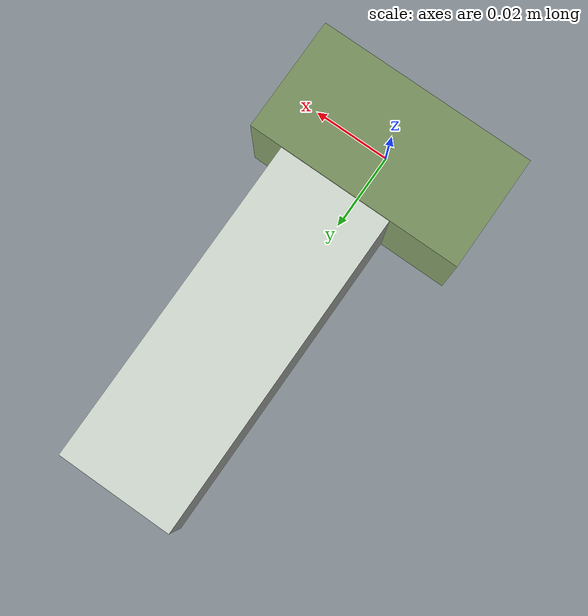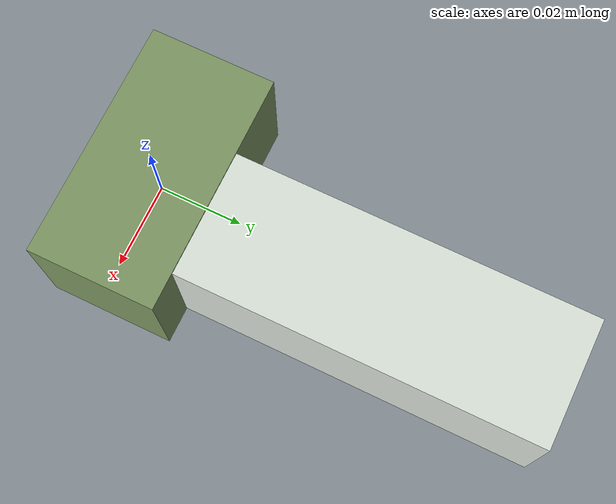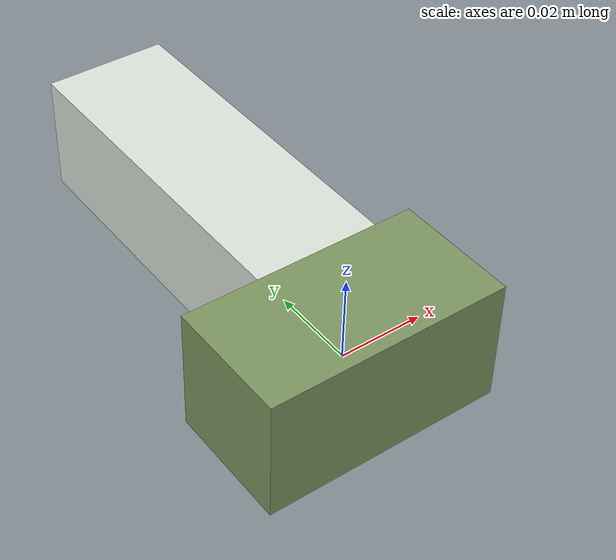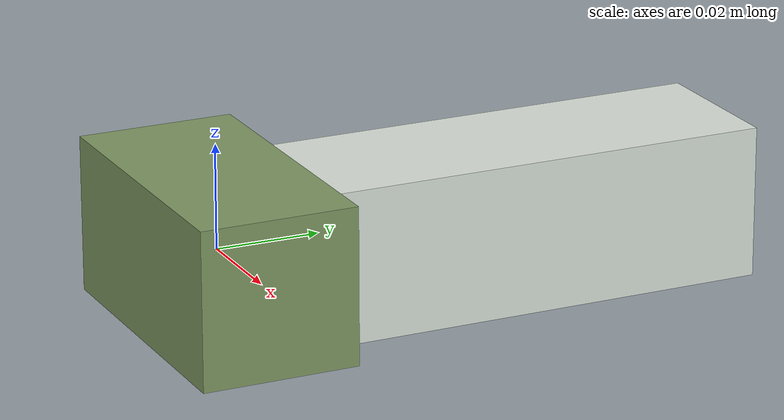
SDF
<sdf version="1.4"><world name="default"><model name="object0"><link name="link1"><pose>0 0 0 0 0 0</pose><inertial><pose>0 0 0 0 0 0</pose><mass>0.030860023036792812</mass><inertia><ixx>4.629003455518922e-06</ixx><ixy>0</ixy><iyy>1.0713354572009371e-05</iyy><ixz>0</ixz><iyz>0</iyz><izz>1.0713354572009371e-05</izz></inertia></inertial><visual name="link1_visual"><pose>0 0  0 0 0 0</pose><geometry><box><size>0.05714819080887558 0.03 0.03</size></box></geometry><material><diffuse>0.4952276674923579 0.5943401662413915 0.3870311076733249 1</diffuse></material></visual><collision><pose>0 0  0 0 0 0</pose><geometry><box><size>0.05714819080887558 0.03 0.03</size></box></geometry></collision></link><link name="link2"><pose>0.004871316720210562 0.049422340159435765 0 0 0 0</pose><inertial><pose>0 0 0 0 0 0</pose><mass>0.05489910681697894</mass><inertia><ixx>5.113291276390232e-05</ixx><ixy>0</ixy><iyy>7.964945414030027e-06</iyy><ixz>0</ixz><iyz>0</iyz><izz>5.1402833372419135e-05</izz></inertia></inertial><visual name="link2_visual"><pose>0 0  0 0 0 0</pose><geometry><box><size>0.03 0.10166501262403509 0.028999999999999998</size></box></geometry><material><diffuse>0.8601147520784049 0.8950461302173085 0.8569773496154423 1</diffuse></material></visual><collision><pose>0 0  0 0 0 0</pose><geometry><box><size>0.03 0.10166501262403509 0.028999999999999998</size></box></geometry></collision></link><joint name="link_joint_0" type="fixed"><parent>link1</parent><child>link2</child><pose>0 0 0 0 0 0</pose><axis><xyz>0 0 1</xyz></axis></joint></model></world></sdf>
